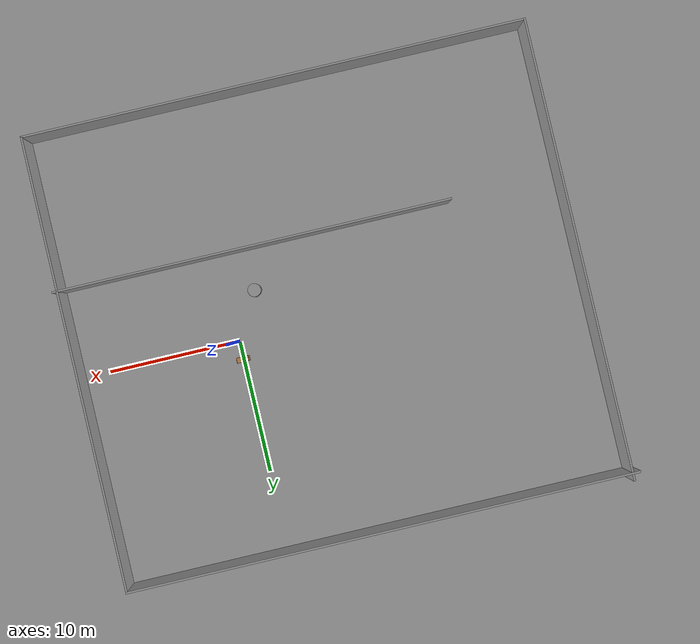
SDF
<sdf version="1.6">
 <world name="default">
  <light name="sun" type="directional">
   <pose>0 0 10 0 -0 0</pose>
   <diffuse>0.8 0.8 0.8 1</diffuse>
   <specular>0.2 0.2 0.2 1</specular>
   <attenuation>
    <range>1000</range>
    <constant>0.9</constant>
    <linear>0.01</linear>
    <quadratic>0.001</quadratic>
   </attenuation>
   <direction>0.5 0.1 -0.9</direction>
  </light>
  <scene><ambient>0.4 0.4 0.4 1</ambient><background>0.7 0.7 0.7 1</background><shadows>1</shadows></scene>
  <physics name="default_physics" default="0" type="ode">
   <max_step_size>0.01</max_step_size>
   <real_time_factor>1</real_time_factor>
   <real_time_update_rate>100</real_time_update_rate>
  </physics>
  <model name="bookshelf">
   <static>1</static>
   <link name="link">
    <inertial><mass>1</mass></inertial>
    <collision name="back">
     <pose>0 0.005 0.6 0 -0 0</pose>
     <geometry><box><size>0.9 0.01 1.2</size></box></geometry>
    </collision>
    <visual name="visual1">
     <pose>0 0.005 0.6 0 -0 0</pose>
     <geometry><box><size>0.9 0.01 1.2</size></box></geometry>
     <material>
      <script><uri>file://media/materials/scripts/gazebo.material</uri><name>Gazebo/Wood</name></script>
     </material>
    </visual>
    <collision name="left_side">
     <pose>0.45 -0.195 0.6 0 -0 0</pose>
     <geometry><box><size>0.02 0.4 1.2</size></box></geometry>
    </collision>
    <visual name="visual2">
     <pose>0.45 -0.195 0.6 0 -0 0</pose>
     <geometry><box><size>0.02 0.4 1.2</size></box></geometry>
     <material>
      <script><uri>file://media/materials/scripts/gazebo.material</uri><name>Gazebo/Wood</name></script>
     </material>
    </visual>
    <collision name="right_side">
     <pose>-0.45 -0.195 0.6 0 -0 0</pose>
     <geometry><box><size>0.02 0.4 1.2</size></box></geometry>
    </collision>
    <visual name="visual3">
     <pose>-0.45 -0.195 0.6 0 -0 0</pose>
     <geometry><box><size>0.02 0.4 1.2</size></box></geometry>
     <material>
      <script><uri>file://media/materials/scripts/gazebo.material</uri><name>Gazebo/Wood</name></script>
     </material>
    </visual>
    <collision name="bottom">
     <pose>0 -0.195 0.03 0 -0 0</pose>
     <geometry><box><size>0.88 0.4 0.06</size></box></geometry>
    </collision>
    <visual name="visual4">
     <pose>0 -0.195 0.03 0 -0 0</pose>
     <geometry><box><size>0.88 0.4 0.06</size></box></geometry>
     <material>
      <script><uri>file://media/materials/scripts/gazebo.material</uri><name>Gazebo/Wood</name></script>
     </material>
    </visual>
    <collision name="top">
     <pose>0 -0.195 1.19 0 -0 0</pose>
     <geometry><box><size>0.88 0.4 0.02</size></box></geometry>
    </collision>
    <visual name="visual5">
     <pose>0 -0.195 1.19 0 -0 0</pose>
     <geometry><box><size>0.88 0.4 0.02</size></box></geometry>
     <material>
      <script><uri>file://media/materials/scripts/gazebo.material</uri><name>Gazebo/Wood</name></script>
     </material>
    </visual>
    <collision name="low_shelf">
     <pose>0 -0.195 0.43 0 -0 0</pose>
     <geometry><box><size>0.88 0.4 0.02</size></box></geometry>
    </collision>
    <visual name="visual6">
     <pose>0 -0.195 0.43 0 -0 0</pose>
     <geometry><box><size>0.88 0.4 0.02</size></box></geometry>
     <material>
      <script><uri>file://media/materials/scripts/gazebo.material</uri><name>Gazebo/Wood</name></script>
     </material>
    </visual>
    <collision name="high_shelf">
     <pose>0 -0.195 0.8 0 -0 0</pose>
     <geometry><box><size>0.88 0.4 0.02</size></box></geometry>
    </collision>
    <visual name="visual7">
     <pose>0 -0.195 0.8 0 -0 0</pose>
     <geometry><box><size>0.88 0.4 0.02</size></box></geometry>
     <material>
      <script><uri>file://media/materials/scripts/gazebo.material</uri><name>Gazebo/Wood</name></script>
     </material>
    </visual>
    <velocity_decay><linear>0</linear><angular>0</angular></velocity_decay>
   </link>
   <pose>0 1.53026 0 0 -0 0</pose>
  </model>
  <model name="ground_plane_0">
   <static>1</static>
   <link name="link">
    <collision name="collision">
     <geometry><plane><normal>0 0 1</normal><size>100 100</size></plane></geometry>
     <surface><friction><ode><mu>100</mu><mu2>50</mu2></ode></friction></surface>
    </collision>
    <visual name="visual">
     <cast_shadows>0</cast_shadows>
     <geometry><plane><normal>0 0 1</normal><size>100 100</size></plane></geometry>
     <material>
      <script><uri>file://media/materials/scripts/gazebo.material</uri><name>Gazebo/Grey</name></script>
     </material>
    </visual>
    <velocity_decay><linear>0</linear><angular>0</angular></velocity_decay>
   </link>
   <pose>0.497681 0 0 0 -0 0</pose>
  </model>
  <model name="unit_cylinder_1">
   <pose>-2 -3.4888 0.49912 -0 -0 -0</pose>
   <link name="link">
    <inertial>
     <mass>1</mass>
     <inertia><ixx>1</ixx><ixy>0</ixy><ixz>0</ixz><iyy>1</iyy><iyz>0</iyz><izz>1</izz></inertia>
    </inertial>
    <collision name="collision">
     <geometry><cylinder><radius>0.5</radius><length>1</length></cylinder></geometry>
    </collision>
    <visual name="visual">
     <geometry><cylinder><radius>0.5</radius><length>1</length></cylinder></geometry>
     <material>
      <script><uri>file://media/materials/scripts/gazebo.material</uri><name>Gazebo/Grey</name></script>
     </material>
    </visual>
    <velocity_decay><linear>0</linear><angular>0</angular></velocity_decay>
   </link>
   <static>0</static>
  </model>
  <gravity>0 0 -9.8</gravity>
  <magnetic_field>6e-06 2.3e-05 -4.2e-05</magnetic_field>
  <atmosphere type="adiabatic"/>
  <audio><device>default</device></audio>
  <spherical_coordinates>
   <surface_model>EARTH_WGS84</surface_model>
   <latitude_deg>0</latitude_deg>
   <longitude_deg>0</longitude_deg>
   <elevation>0</elevation>
   <heading_deg>0</heading_deg>
  </spherical_coordinates>
  <model name="Untitled">
   <pose>-7.07367 -0.919283 0 0 -0 0</pose>
   <link name="Wall_2">
    <collision name="Wall_2_Collision">
     <geometry><box><size>34.75 0.15 2.5</size></box></geometry>
     <pose>0 0 1.25 0 -0 0</pose>
    </collision>
    <visual name="Wall_2_Visual">
     <pose>0 0 1.25 0 -0 0</pose>
     <geometry><box><size>34.75 0.15 2.5</size></box></geometry>
     <material>
      <script><uri>file://media/materials/scripts/gazebo.material</uri><name>Gazebo/Grey</name></script>
      <ambient>1 1 1 1</ambient>
     </material>
     <meta><layer>0</layer></meta>
    </visual>
    <pose>-18.8281 1e-06 0 0 -0 -1.5708</pose>
   </link>
   <link name="Wall_3">
    <collision name="Wall_3_Collision">
     <geometry><box><size>38 0.15 2.5</size></box></geometry>
     <pose>0 0 1.25 0 -0 0</pose>
    </collision>
    <visual name="Wall_3_Visual">
     <pose>0 0 1.25 0 -0 0</pose>
     <geometry><box><size>38 0.15 2.5</size></box></geometry>
     <material>
      <script><uri>file://media/materials/scripts/gazebo.material</uri><name>Gazebo/Grey</name></script>
      <ambient>1 1 1 1</ambient>
     </material>
     <meta><layer>0</layer></meta>
    </visual>
    <pose>0.096868 -17.3 0 0 -0 0</pose>
   </link>
   <link name="Wall_4">
    <collision name="Wall_4_Collision">
     <geometry><box><size>34.25 0.15 2.5</size></box></geometry>
     <pose>0 0 1.25 0 -0 0</pose>
    </collision>
    <visual name="Wall_4_Visual">
     <pose>0 0 1.25 0 -0 0</pose>
     <geometry><box><size>34.25 0.15 2.5</size></box></geometry>
     <material>
      <script><uri>file://media/materials/scripts/gazebo.material</uri><name>Gazebo/Grey</name></script>
      <ambient>1 1 1 1</ambient>
     </material>
     <meta><layer>0</layer></meta>
    </visual>
    <pose>19.0219 -0.249999 0 0 -0 1.5708</pose>
   </link>
   <link name="Wall_5">
    <collision name="Wall_5_Collision">
     <geometry><box><size>38.5 0.15 2.5</size></box></geometry>
     <pose>0 0 1.25 0 -0 0</pose>
    </collision>
    <visual name="Wall_5_Visual">
     <pose>0 0 1.25 0 -0 0</pose>
     <geometry><box><size>38.5 0.15 2.5</size></box></geometry>
     <material>
      <script><uri>file://media/materials/scripts/gazebo.material</uri><name>Gazebo/Grey</name></script>
      <ambient>1 1 1 1</ambient>
     </material>
     <meta><layer>0</layer></meta>
    </visual>
    <pose>-0.153132 16.8 0 0 -0 3.14159</pose>
   </link>
   <link name="Wall_7">
    <collision name="Wall_7_Collision">
     <geometry><box><size>30 0.15 2.5</size></box></geometry>
     <pose>0 0 1.25 0 -0 0</pose>
    </collision>
    <visual name="Wall_7_Visual">
     <pose>0 0 1.25 0 -0 0</pose>
     <geometry><box><size>30 0.15 2.5</size></box></geometry>
     <material>
      <script><uri>file://media/materials/scripts/gazebo.material</uri><name>Gazebo/Grey</name></script>
      <ambient>1 1 1 1</ambient>
     </material>
     <meta><layer>0</layer></meta>
    </visual>
    <pose>4.40313 -5.71143 0 0 -0 0</pose>
   </link>
   <static>1</static>
  </model>
 </world>
</sdf>
